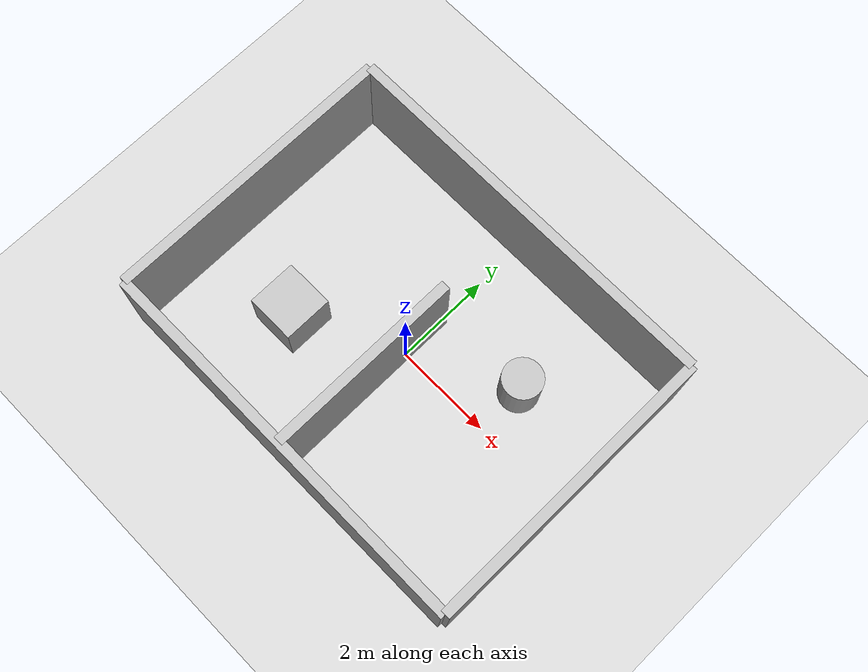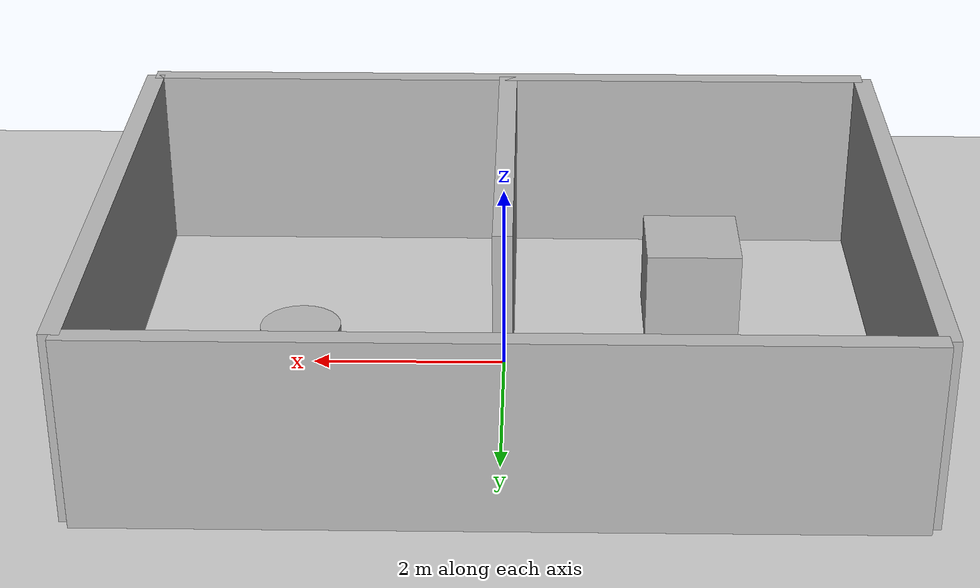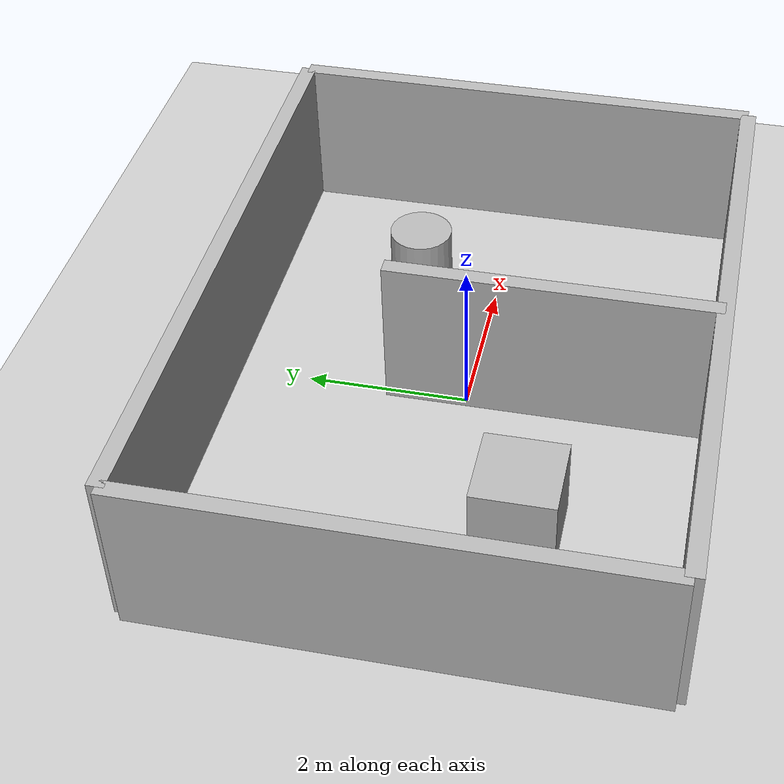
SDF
<?xml version="1.0" ?>
<sdf version="1.6">
  <world name="sterilization_world">
    <include><uri>model://sun</uri></include>
    <include><uri>model://ground_plane</uri></include>

    <model name="walls">
      <static>true</static>
      <link name="link">
        <!-- Outer Boundaries -->
        <collision name="top"><pose>0 3 1 0 0 0</pose><geometry><box><size>8 0.2 2</size></box></geometry></collision>
        <visual name="top_v"><pose>0 3 1 0 0 0</pose><geometry><box><size>8 0.2 2</size></box></geometry></visual>
        <collision name="bottom"><pose>0 -3 1 0 0 0</pose><geometry><box><size>8 0.2 2</size></box></geometry></collision>
        <visual name="bottom_v"><pose>0 -3 1 0 0 0</pose><geometry><box><size>8 0.2 2</size></box></geometry></visual>
        <collision name="left"><pose>-4 0 1 0 0 0</pose><geometry><box><size>0.2 6 2</size></box></geometry></collision>
        <visual name="left_v"><pose>-4 0 1 0 0 0</pose><geometry><box><size>0.2 6 2</size></box></geometry></visual>
        <collision name="right"><pose>4 0 1 0 0 0</pose><geometry><box><size>0.2 6 2</size></box></geometry></collision>
        <visual name="right_v"><pose>4 0 1 0 0 0</pose><geometry><box><size>0.2 6 2</size></box></geometry></visual>

        <!-- Dividing Wall (leaves a 1.5m doorway at the top) -->
        <collision name="divider"><pose>0 -1 1 0 0 0</pose><geometry><box><size>0.2 4 2</size></box></geometry></collision>
        <visual name="divider_v"><pose>0 -1 1 0 0 0</pose><geometry><box><size>0.2 4 2</size></box></geometry></visual>
      </link>
    </model>

    <!-- Minimal Furniture -->
    <model name="table1">
      <static>true</static>
      <pose>-2 -1 0.5 0 0 0</pose>
      <link name="l">
        <collision name="c"><geometry><box><size>1 1 1</size></box></geometry></collision>
        <visual name="v"><geometry><box><size>1 1 1</size></box></geometry></visual>
      </link>
    </model>

    <model name="cylinder_obstacle">
      <static>true</static>
      <pose>2 1 0.5 0 0 0</pose>
      <link name="l">
        <collision name="c"><geometry><cylinder><radius>0.4</radius><length>1</length></cylinder></geometry></collision>
        <visual name="v"><geometry><cylinder><radius>0.4</radius><length>1</length></cylinder></geometry></visual>
      </link>
    </model>
  </world>
</sdf>
